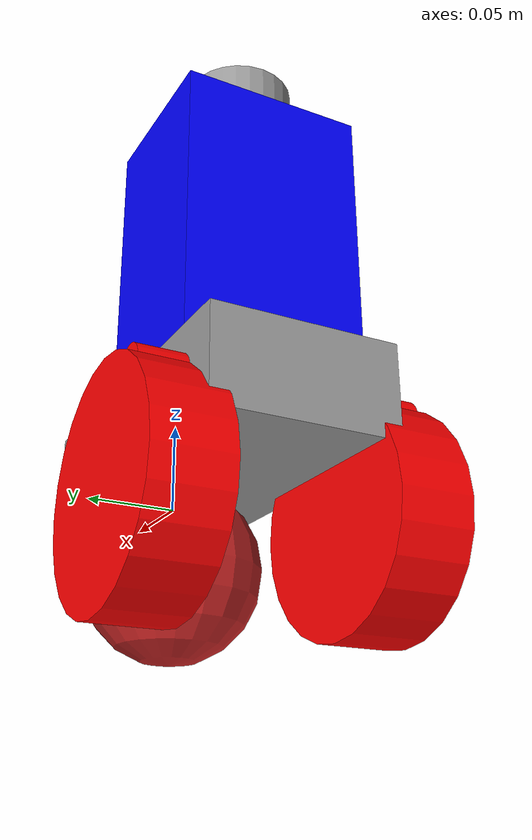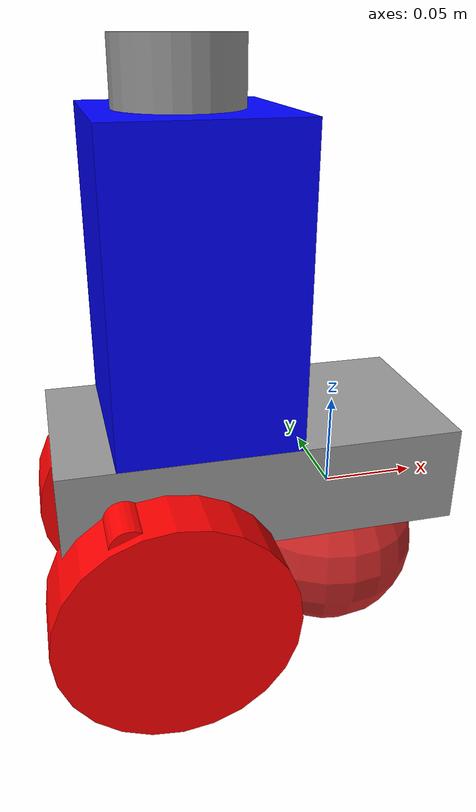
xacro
<?xml version="1.0"?>
<robot xmlns:xacro="http://www.ros.org/wiki/xacro"  name="robot">

    <xacro:include filename="bot_model.xacro"/>
    <xacro:include filename="inertial_macros.xacro"/>
    <xacro:include filename="gazebo_control.xacro"/>
    <xacro:include filename="camera.xacro"/>
    <xacro:include filename="lidar.xacro"/>
</robot>

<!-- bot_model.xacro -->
<robot xmlns:xacro="http://www.ros.org/wiki/xacro"  name="robot">

    <xacro:include filename="inertial_macros.xacro"/>

    <material name = "red">
        <color rgba = "1 0 0 1"/>
    </material>

    <material name = "green">
        <color rgba = "0 1 0 1"/>
    </material>

    <material name = "blue">
        <color rgba = "0 0 1 1"/>
    </material>

    <material name = "grey">
        <color rgba = "0.6 0.6 0.6 1" />
    </material>

    <link name = "base_link">

    </link>

    <joint name = "base_link_joint" type = "fixed">
        <parent link = "base_link"/>
        <child link = "chassis"/>
        <origin xyz = "-0.1 0 0"/>
    </joint>

    <link name = "chassis">
        <visual>
            <origin xyz = "0.05 0 0.025"/>
            <geometry>
                <box size = "0.2 0.10 0.05"/>
            </geometry>
            <material name = "grey" />
        </visual>
        <collision>
            <origin xyz = "0.05 0 0.025" />
            <geometry>
                <box size = "0.2 0.10 0.05"/>
            </geometry>
        </collision>
        <xacro:inertial_box mass = "0.05" x = "0.2" y="0.1" z="0.05" >
            <origin xyz = "0.05 0 0.025" />
        </xacro:inertial_box>
    </link>

    <joint name = "base_footprint_joint" type = "fixed">
        <parent link = "base_link"/>
        <child link = "base_footprint"/>
        <origin xyz = "0 0 0"/>
    </joint>

    <link name = "base_footprint">

    </link>

    <joint name = "column_joint" type = "fixed">
        <parent link = "chassis"/>
        <child link = "column_link"/>
        <origin xyz = "0.02 0 0.05"/>
    </joint>

    <link name = "column_link">
        <visual>
            <origin xyz="0.003 0 0.075"/>
            <geometry>
                <box size = "0.09 0.10 0.15"/>
            </geometry>
            <material name = "blue"/>
        </visual>
        <collision>
            <origin xyz = "0 0 0.075"/>
            <geometry>
                <box size = "0.09 0,10 0.15"/>
            </geometry>
        </collision>
        <xacro:inertial_box mass = "0.04" x = "0.09" y="0.10" z="0.15">
            <origin xyz = "0.003 0 0.075"/>
        </xacro:inertial_box>
    </link>

    <joint name = "wheel_joint" type = "fixed">
        <parent link = "chassis"/>
        <child link = "wheel_link"/>
        <origin xyz = "-0.02 0 0.025" rpy = "-${pi/2} 0 0"/>
        <axis xyz = "0 0 1" />
    </joint>

    <link name = "wheel_link">
        <visual>
            <geometry>
                <cylinder radius = "0.01" length = "0.15"/>
            </geometry>
            <material name = "red" />
        </visual>
        <collision>
            <geometry>
                <cylinder radius = "0.01" length = "0.15"/>
            </geometry>
        </collision>
        <xacro:inertial_cylinder mass = "0.03" radius = "0.07" length = "0.04">
            <origin xyz = "0 0 0" rpy = "0 0 0" />
        </xacro:inertial_cylinder>
    </link>

    <joint name = "left_wheel_joint" type = "fixed">
        <parent link = "chassis"/>
        <child link = "left_wheel"/>
        <origin xyz = "0 0.06 -0.025" rpy = "-${pi/2} 0 0"/>
    </joint>

    <link name = "left_wheel">
        <visual>
            <geometry>
                <cylinder radius = "0.06" length = "0.04"/>
            </geometry>
            <material name = "red" />
        </visual>
        <collision>
            <geometry>
                <cylinder radius = "0.06" length = "0.04"/>
            </geometry>
        </collision>
        <xacro:inertial_cylinder mass = "0.1" radius = "0.06" length = "0.04">
            <origin xyz = "0 0 0" rpy = "0 0 0" />
        </xacro:inertial_cylinder>
    </link>

    <joint name = "right_wheel_joint" type = "fixed">
        <parent link = "chassis"/>
        <child link = "right_wheel"/>
        <origin xyz = "0 -0.06 -0.025" rpy = "-${pi/2} 0 0"/>
    </joint>

    <link name = "right_wheel">
        <visual>
            <geometry>
                <cylinder radius = "0.06" length = "0.04"/>
            </geometry>
            <material name = "red" />
        </visual>
        <collision>
            <geometry>
                <cylinder radius = "0.06" length = "0.04"/>
            </geometry>
        </collision>
        <xacro:inertial_cylinder mass = "0.1" radius = "0.06" length = "0.04">
            <origin xyz = "0 0 0" rpy = "0 0 0" />
        </xacro:inertial_cylinder>
    </link>

    <joint name = "caster_wheel_joint" type = "fixed">
        <parent link = "chassis"/>
        <child link = "caster_wheel"/>
        <origin xyz = "0.1 0 -0.035"/>
    </joint>

    <link name = "caster_wheel" >
        <visual>
            <geometry>
                <sphere radius = "0.05" />
            </geometry>
        </visual>
        <collision>
            <geometry>
                <sphere radius = "0.05" />
            </geometry>
        </collision>
        <xacro:inertial_sphere mass = "0.5" radius = "0.05">
            <origin xyz = "0 0 0" rpy = "0 0 0"/>
        </xacro:inertial_sphere>
    </link>

    <gazebo reference="caster_wheel">
        <material>Gazebo/Red</material>
        <mu1 value="0.01" />
        <mu2 value="0.01" />
    </gazebo>

    <gazebo reference="chassis">
        <material>Gazebo/White</material>
    </gazebo>

    <gazebo reference="left_wheel">
        <material>Gazebo/Red</material>
    </gazebo>

    <gazebo reference = "right_wheel">
        <material>Gazebo/Red</material>
    </gazebo>

    <gazebo reference = "column_link">
        <material>Gazebo/Blue</material>
    </gazebo>

</robot>

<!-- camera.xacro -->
<robot xmlns:xacro="http://www.ros.org/wiki/xacro" >

    <joint name="camera_joint" type="fixed">
        <parent link="column_link"/>
        <child link="camera_frame"/>
        <origin xyz="0.05 0 0.1" rpy="0 0 0"/>
    </joint>

    <link name="camera_frame">
        <visual>
            <geometry>
                <box size="0.010 0.03 0.03" />
            </geometry>
            <material name="red"/>
        </visual>
        <collision>
            <geometry>
                <cylinder radius="0.05" length="0.04"/>
            </geometry>
        </collision>
        <xacro:inertial_cylinder mass="0.1" length="0.04" radius="0.05">
            <origin xyz="0 0 0" rpy="0 0 0"/>
        </xacro:inertial_cylinder>
    </link>

    <joint name="camera_optical_joint" type="fixed">
        <parent link="camera_frame"/>
        <child link="camera_optical_frame"/>
        <origin xyz="0 0 0" rpy="${-pi/2} 0 ${-pi/2}"/>
    </joint>

    <link name="camera_optical_frame">

    </link>

    <gazebo reference="camera_frame">
        <material>Gazebo/Red</material>

        <sensor name="camera" type="camera">
            <pose> 0 0 0 0 0 0 </pose>
            <visualize>true</visualize>
            <update_rate>10</update_rate>
            <camera>
                <horizontal_fov>1.089</horizontal_fov>
                <image>
                    <format>R8G8B8</format>
                    <width>640</width>
                    <height>480</height>
                </image>
                <clip>
                    <near>0.05</near>
                    <far>14.0</far>
                </clip>
            </camera>

            <plugin name="camera_controller" filename="libgazebo_ros_camera.so">
                <frame_name>camera_optical_frame</frame_name>

            </plugin>
        </sensor>
    </gazebo>

</robot>

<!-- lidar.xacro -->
<robot xmlns:xacro="http://www.ros.org/wiki/xacro" >

    <joint name="lidar_joint" type="fixed">
        <parent link="column_link"/>
        <child link="lidar_frame"/>
        <origin xyz="0 0 0.16" rpy="0 0 0"/>
    </joint>

    <link name="lidar_frame">
        <visual>
            <geometry>
                <cylinder radius="0.03" length="0.04" />
            </geometry>
            <material name="gray" />
        </visual>
        <collision>
            <geometry>
                <cylinder radius="0.03" length="0.04" />
            </geometry>
        </collision>
        <xacro:inertial_cylinder mass="0.1" length="0.03" radius="0.05">
            <origin xyz="0 0 0" rpy="0 0 0"/>
        </xacro:inertial_cylinder>
    </link>

    <gazebo reference="lidar_frame">
        <material>Gazebo/Gray</material>

        <sensor name="laser" type="ray">
            <pose> 0 0 0 0 0 0 </pose>
            <visualize>true</visualize>
            <update_rate>10</update_rate>
            <ray>
                <scan>
                    <horizontal>
                        <samples>360</samples>
                        <resolution>1</resolution>
                        <min_angle>-3.14</min_angle>
                        <max_angle>3.14</max_angle>
                    </horizontal>
                </scan>
                <range>
                    <min>0.2</min>
                    <max>12</max>
                    <resolution>0.01</resolution>
                </range>
            </ray>
            <plugin name="laser_controller" filename="libgazebo_ros_ray_sensor.so">
                <ros>
                    <argument>~/out:=scan</argument>
                </ros>
                <output_type>sensor_msgs/LaserScan</output_type>
                <frame_name>lidar_frame</frame_name>
            </plugin>
        </sensor>
    </gazebo>

</robot>
